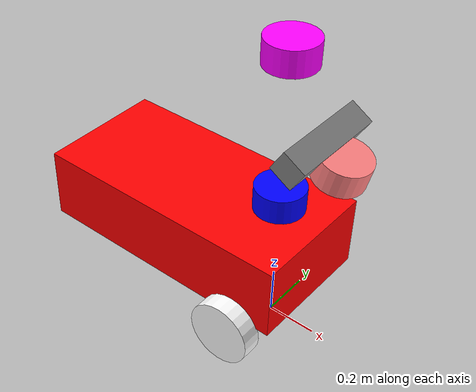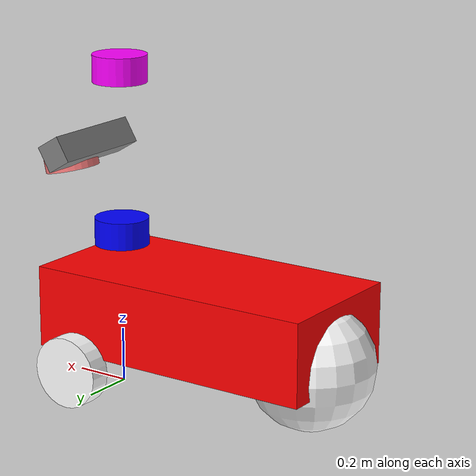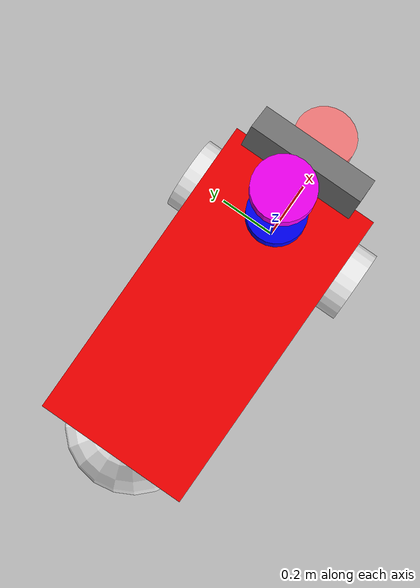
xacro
<?xml version="1.0" ?>
<robot xmlns:xacro="http://ros.org/wiki/xacro" name="basic_mobile_bot"  >

  <!-- ****************** ROBOT CONSTANTS *******************************  -->

  <!-- defing oak camera position relative to base_link -->
    <xacro:property name="oak_z" value ="0.5"/>
    <xacro:property name="oak_x" value ="0.15"/>
    <xacro:property name="oak_r" value ="0.0"/>
    <xacro:property name="oak_p" value ="0.54"/>

  <!-- Define the size of the robot's main chassis in meters -->
  <xacro:property name="base_width" value="0.54"/>
  <xacro:property name="base_length" value="1.1"/>
  <xacro:property name="base_height" value="0.30"/>

  <!-- Define the shape of the robot's two back wheels in meters -->
  <xacro:property name="wheel_radius" value="0.13"/>
  <xacro:property name="wheel_width" value="0.08"/>

  <!-- x-axis points forward, y-axis points to left, z-axis points upwards -->
  <!-- Define the gap between the wheel and chassis along y-axis in meters -->
  <xacro:property name="wheel_ygap" value="0.035"/>

  <!-- Position the wheels along the z-axis -->
  <xacro:property name="wheel_zoff" value="0.25"/>

  <!-- Position the wheels along the x-axis -->
  <xacro:property name="wheel_xoff" value="0.0"/>

  <!-- Position the caster wheel along the x-axis -->
  <xacro:property name="caster_xoff" value="0.817"/>

  <!-- Define intertial property macros  -->
  <xacro:macro name="box_inertia" params="m w h d">
    <inertial>
      <origin xyz="0 0 0" rpy="${pi/2} 0 ${pi/2}"/>
      <mass value="${m}"/>
      <inertia ixx="${(m/12) * (h*h + d*d)}" ixy="0.0" ixz="0.0" iyy="${(m/12) * (w*w + d*d)}" iyz="0.0" izz="${(m/12) * (w*w + h*h)}"/>
    </inertial>
  </xacro:macro>

  <xacro:macro name="cylinder_inertia" params="m r h">
    <inertial>
      <origin xyz="0 0 0" rpy="${pi/2} 0 0" />
      <mass value="${m}"/>
      <inertia ixx="${(m/12) * (3*r*r + h*h)}" ixy = "0" ixz = "0" iyy="${(m/12) * (3*r*r + h*h)}" iyz = "0" izz="${(m/2) * (r*r)}"/>
    </inertial>
  </xacro:macro>

  <xacro:macro name="sphere_inertia" params="m r">
    <inertial>
      <mass value="${m}"/>
      <inertia ixx="${(2/5) * m * (r*r)}" ixy="0.0" ixz="0.0" iyy="${(2/5) * m * (r*r)}" iyz="0.0" izz="${(2/5) * m * (r*r)}"/>
    </inertial>
  </xacro:macro>

  <!-- ****************** ROBOT BASE FOOTPRINT ***************************  -->
  <!-- Define the center of the main robot chassis projected on the ground -->
  <link name="base_footprint"/>

  <!-- The base footprint of the robot is located underneath the chassis -->
  <joint name="base_joint" type="fixed">
    <parent link="base_footprint"/>
    <child link="base_link" />
    <origin xyz="0.0 0.0 ${(wheel_radius+wheel_zoff)}" rpy="0 0 0"/>
  </joint>

  <!-- ********************** ROBOT BASE *********************************  -->
  <link name="base_link">
    <visual>
      <origin xyz="${-1.0*(-0.17+base_length/2.0)} 0 -0.05" rpy="0.0 0 3.141592654"/>
      <geometry>
         <box size="${base_length} ${base_width} ${base_height}"/>
      </geometry>
      <material name="Red">
        <color rgba="${255/255} ${0/255} ${0/255} 1.0"/>
      </material>
    </visual>

    <collision>
      <geometry>
        <box size="${base_length} ${base_width} ${base_height}"/>
      </geometry>
    </collision>

    <xacro:box_inertia m="40.0" w="${base_width}" d="${base_length}" h="${base_height}"/>

  </link>

  <gazebo reference="base_link">
    <material>Gazebo/Red</material>
  </gazebo>

  <!-- *********************** DRIVE WHEELS ******************************  -->

  <xacro:macro name="wheel" params="prefix x_reflect y_reflect">
    <link name="${prefix}_link">
      <visual>
        <origin xyz="0 0 0" rpy="1.5707963267949 0 0"/>
        <geometry>
            <cylinder radius="${wheel_radius}" length="${wheel_width}"/>
        </geometry>
        <material name="White">
          <color rgba="${255/255} ${255/255} ${255/255} 1.0"/>
        </material>
      </visual>

      <collision>
        <origin xyz="0 0 0" rpy="${pi/2} 0 0"/>
        <geometry>
          <cylinder radius="${wheel_radius}" length="${wheel_width}"/>
        </geometry>
      </collision>

      <xacro:cylinder_inertia m="110.5" r="${wheel_radius}" h="${wheel_width}"/>

    </link>

    <!-- Connect the wheels to the base_link at the appropriate location, and
         define a continuous joint to allow the wheels to freely rotate about
         an axis -->
    <joint name="${prefix}_joint" type="continuous">
      <parent link="base_link"/>
      <child link="${prefix}_link"/>
      <origin xyz="${x_reflect*wheel_xoff} ${y_reflect*(base_width/2+wheel_ygap)} ${-wheel_zoff}" rpy="0 0 0"/>
      <limit upper="3.1415" lower="-3.1415" effort="30" velocity="5.0"/>
      <axis xyz="0 1 0"/>
    </joint>
  </xacro:macro>

  <xacro:wheel prefix="drivewhl_l" x_reflect="-1" y_reflect="1" />
  <xacro:wheel prefix="drivewhl_r" x_reflect="-1" y_reflect="-1" />

  <!-- *********************** CASTER WHEEL ******************************  -->
  <!-- We add a caster wheel. It will be modeled as sphere.
       We define the wheel’s geometry, material and the joint to connect it to
       base_link at the appropriate location. -->
  <link name="front_caster">
    <visual>
      <geometry>
        <sphere radius="${(wheel_radius+wheel_zoff-(base_height/2))}"/>
      </geometry>
      <material name="White">
        <color rgba="${255/255} ${255/255} ${255/255} 1.0"/>
      </material>
    </visual>
    <collision>
      <origin xyz="0 0 0" rpy="0 0 0"/>
      <geometry>
        <sphere radius="${(wheel_radius+wheel_zoff-(base_height/2))}"/>
      </geometry>
    </collision>
    <xacro:sphere_inertia m="10.05" r="${(wheel_radius+wheel_zoff-(base_height/2))}"/>
  </link>

  <gazebo reference="front_caster">
    <mu1>0.01</mu1>
    <mu2>0.01</mu2>
    <material>Gazebo/White</material>
  </gazebo>

  <joint name="caster_joint" type="fixed">
    <parent link="base_link"/>
    <child link="front_caster"/>
    <origin xyz="${-1.0*caster_xoff} 0.0 ${-(base_height/2)}" rpy="0 0 0"/>
  </joint>

  <!-- *********************** IMU SETUP *********************************  -->
  <!-- Each sensor must be attached to a link.                              -->

  <joint name="imu_joint" type="fixed">
    <parent link="base_link"/>
    <child link="imu_link"/>
    <origin xyz="-0.00 0 0.2" rpy="0 0 0"/>
  </joint>

  <link name="imu_link">
 <visual name="">
            <origin xyz="0.0 0.0 0.0" rpy="0.0 0.0 0.0"/>
            <geometry>
                <cylinder radius="0.1" length="0.1"/>
            </geometry>
            <material name="not_purple">
                <color rgba="0.0 0.0 1.0 1.0"/>
                <texture filename=""/>
            </material>
        </visual>
    </link>
  <!-- *********************** GPS SETUP **********************************  -->
  <joint name="gps_joint" type="fixed">
    <parent link="base_link"/>
    <child link="gps_link"/>
    <origin xyz="0.0 0 0.8" rpy="0 0 0"/>
  </joint>

  <link name="gps_link">
    <visual name="">
            <origin xyz="0.0 0.0 0.0" rpy="0.0 0.0 0.0"/>
            <geometry>
                <cylinder radius="0.1" length="0.1"/>
            </geometry>
            <material name="purple">
                <color rgba="1.0 0.0 1.0 1.0"/>
                <texture filename=""/>
            </material>
        </visual>
    </link>
  <!-- *********************** OAK SETUP **********************************  -->
<joint name="oak_joint" type="fixed">
    <parent link="base_link"/>
    <child link="oak_link"/>
    <origin xyz="${oak_x} 0 ${oak_z}" rpy="${oak_r} ${oak_p} 0"/>
  </joint>

  <link name="oak_link">
    <visual name="">
        <origin xyz="0. 0.0 0.0" rpy="0.0 0.0 0.0"/>
        <geometry>
            <box size=".1 .4 .1"/>
        </geometry>
        <material name="notsure">
            <color rgba="0.5 0.5 0.5 1.0"/>
            <texture filename=""/>
        </material>
    </visual>
    </link>

    <!-- oak optical -->
  <joint name="oak_opt_joint" type="fixed">
    <parent link="oak_link"/>
    <child link="oak-d-base-frame"/>
    <origin xyz=".1 0 0 " rpy="${0*pi/2} ${-pi/10} ${0*pi/2}"/>
  </joint>

  <link name="oak-d-base-frame">
    <visual name="">
        <origin xyz="0. 0.0 0.0" rpy="0.0 0.0 0.0"/>
        <geometry>
            <cylinder radius="0.1" length="0.1"/>
        </geometry>
        <material name="notsure">
            <color rgba="1.0 0.5 0.5 1.0"/>
            <texture filename=""/>
        </material>
    </visual>
    </link>

</robot>
